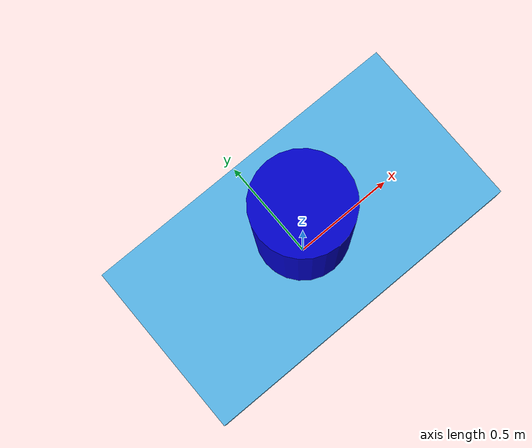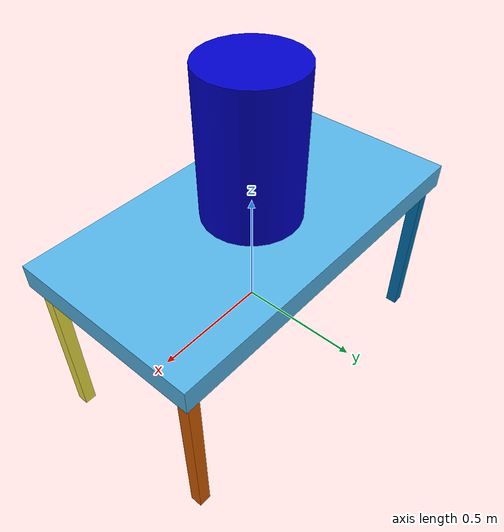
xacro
<?xml version="1.0"?>
<robot xmlns:xacro="http://www.ros.org/wiki/xacro" name="my_environment">

  <!-- Include necessary Xacro files -->
  <xacro:include filename="$(find table_description)/urdf/table.xacro"/>
  <xacro:include filename="$(find urdf_tutorial)/urdf/myfirst.xacro"/>

  <!-- Define World Link -->
  <link name="world"/>

  <!-- Instantiate Table -->
  <xacro:table name="table" xyz="0 0 0" rpy="0 0 0"/>

  <!-- Instantiate MyFirst Cylinder -->
  <xacro:myfirst name="cylinder1" xyz="0 0 0.75" rpy="0 0 0"/>

</robot>

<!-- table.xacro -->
<robot xmlns:xacro="http://www.ros.org/wiki/xacro">

    <xacro:macro name="table" params="name xyz rpy">
        <!-- Base link (Tabletop) -->
        <link name="${name}_base_link">
            <visual>
                <geometry>
                    <box size="1.5 0.8 0.1"/>
                </geometry>
                <origin xyz="0 0 0.4" rpy="0 0 0"/>
            </visual>
        </link>

        <!-- Fixed joint to world -->
        <joint name="${name}_fixed_joint" type="fixed">
            <parent link="world"/>
            <child link="${name}_base_link"/>
            <origin xyz="${xyz}" rpy="${rpy}"/>
        </joint>

        <!-- Table Legs -->
        <link name="${name}_leg_1">
            <visual>
                <geometry>
                    <box size="0.05 0.05 0.7"/>
                </geometry>
                <origin xyz="-0.7 -0.35 0" rpy="0 0 0"/>
            </visual>
        </link>
        <joint name="${name}_joint_leg_1" type="fixed">
            <parent link="${name}_base_link"/>
            <child link="${name}_leg_1"/>
            <origin xyz="0 0 0" rpy="0 0 0"/>
        </joint>

        <link name="${name}_leg_2">
            <visual>
                <geometry>
                    <box size="0.05 0.05 0.7"/>
                </geometry>
                <origin xyz="0.7 -0.35 0" rpy="0 0 0"/>
            </visual>
        </link>
        <joint name="${name}_joint_leg_2" type="fixed">
            <parent link="${name}_base_link"/>
            <child link="${name}_leg_2"/>
            <origin xyz="0 0 0" rpy="0 0 0"/>
        </joint>

        <link name="${name}_leg_3">
            <visual>
                <geometry>
                    <box size="0.05 0.05 0.7"/>
                </geometry>
                <origin xyz="-0.7 0.35 0" rpy="0 0 0"/>
            </visual>
        </link>
        <joint name="${name}_joint_leg_3" type="fixed">
            <parent link="${name}_base_link"/>
            <child link="${name}_leg_3"/>
            <origin xyz="0 0 0" rpy="0 0 0"/>
        </joint>

        <link name="${name}_leg_4">
            <visual>
                <geometry>
                    <box size="0.05 0.05 0.7"/>
                </geometry>
                <origin xyz="0.7 0.35 0" rpy="0 0 0"/>
            </visual>
        </link>
        <joint name="${name}_joint_leg_4" type="fixed">
            <parent link="${name}_base_link"/>
            <child link="${name}_leg_4"/>
            <origin xyz="0 0 0" rpy="0 0 0"/>
        </joint>
    </xacro:macro>

</robot>

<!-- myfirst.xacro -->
<robot xmlns:xacro="http://www.ros.org/wiki/xacro">
  <xacro:macro name="myfirst" params="name xyz rpy">
    <link name="${name}_base_link">
      <visual>
        <geometry>
          <cylinder length="0.6" radius="0.2"/>
        </geometry>
        <origin rpy="0 0 0" xyz="0 0 0"/>
        <material name="blue">
          <color rgba="0 0 0.8 1"/>
        </material>
      </visual>
    </link>

    <!-- Attach myfirst model to world -->
    <joint name="${name}_fixed_joint" type="fixed">
      <parent link="world"/>
      <child link="${name}_base_link"/>
      <origin xyz="${xyz}" rpy="${rpy}"/>
    </joint>

  </xacro:macro>
</robot>
